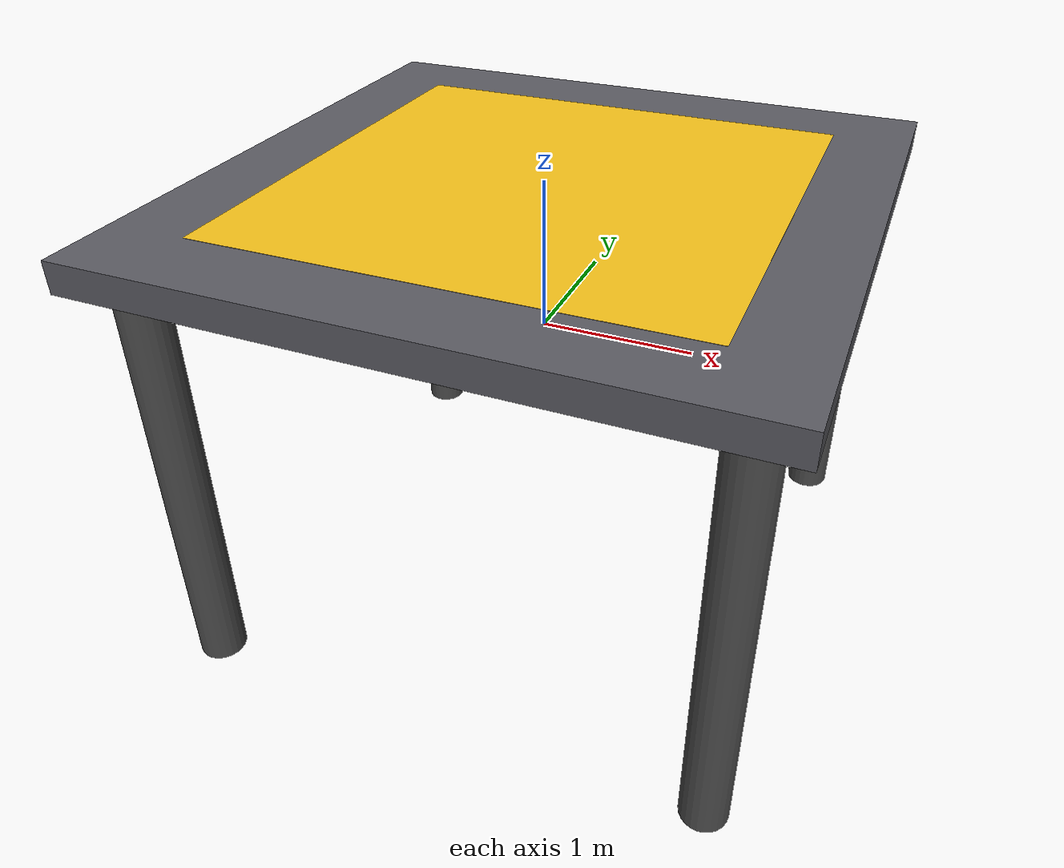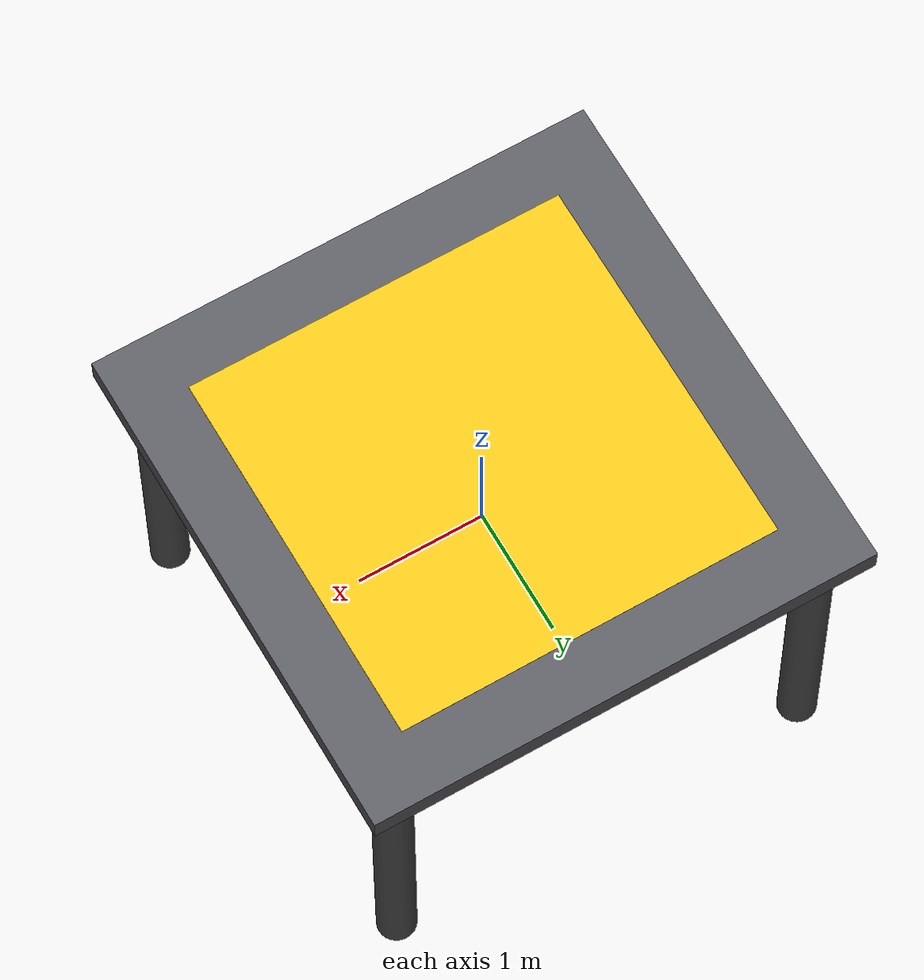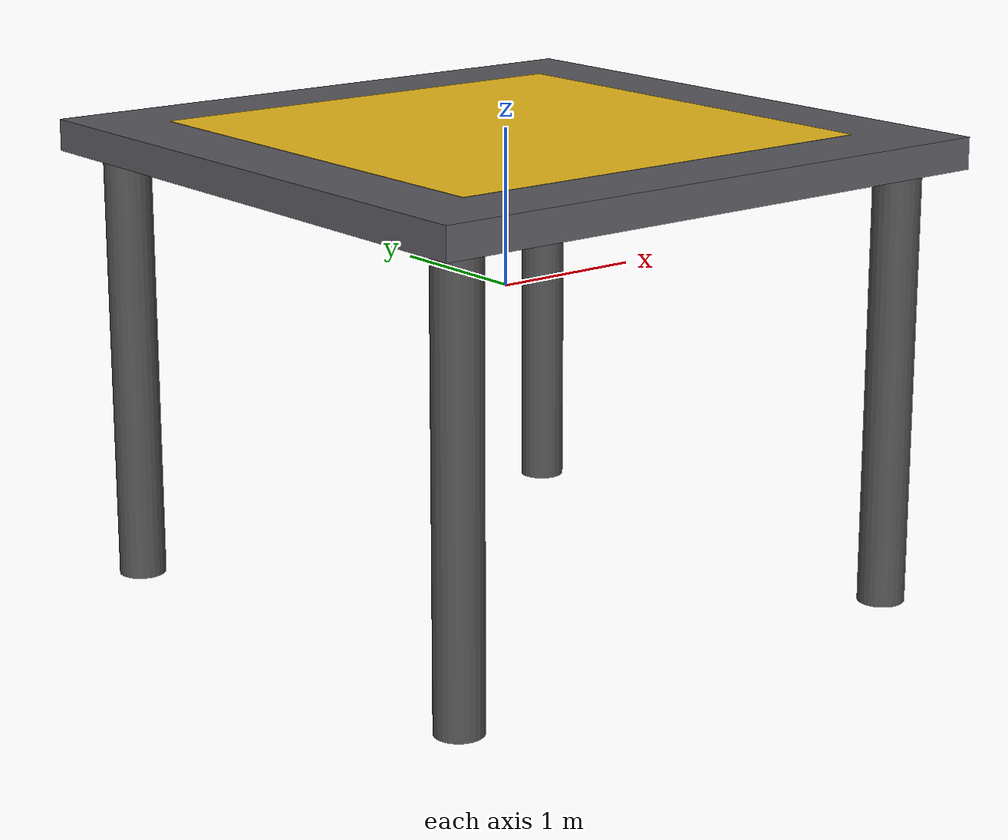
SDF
<?xml version="1.0"?>
<sdf version="1.12">
  <model name="landing_pad">
    <static>true</static>
    <link name="deck">
      <collision name="deck_collision">
        <pose>0 0 0.9 0 0 0</pose>
        <geometry><box><size>4 4 0.2</size></box></geometry>
      </collision>
      <visual name="deck_visual">
        <pose>0 0 0.9 0 0 0</pose>
        <geometry><box><size>4 4 0.2</size></box></geometry>
        <material>
          <ambient>0.35 0.35 0.38 1</ambient>
          <diffuse>0.35 0.35 0.38 1</diffuse>
        </material>
      </visual>
      <visual name="marking">
        <pose>0 0 1.001 0 0 0</pose>
        <geometry><box><size>3 3 0.002</size></box></geometry>
        <material>
          <ambient>0.95 0.75 0.1 1</ambient>
          <diffuse>0.95 0.75 0.1 1</diffuse>
        </material>
      </visual>
      <visual name="pylon_0">
        <pose>1.7 1.7 -0.6 0 0 0</pose>
        <geometry><cylinder><radius>0.15</radius><length>2.8</length></cylinder></geometry>
        <material><ambient>0.3 0.3 0.3 1</ambient><diffuse>0.3 0.3 0.3 1</diffuse></material>
      </visual>
      <visual name="pylon_1">
        <pose>-1.7 1.7 -0.6 0 0 0</pose>
        <geometry><cylinder><radius>0.15</radius><length>2.8</length></cylinder></geometry>
        <material><ambient>0.3 0.3 0.3 1</ambient><diffuse>0.3 0.3 0.3 1</diffuse></material>
      </visual>
      <visual name="pylon_2">
        <pose>1.7 -1.7 -0.6 0 0 0</pose>
        <geometry><cylinder><radius>0.15</radius><length>2.8</length></cylinder></geometry>
        <material><ambient>0.3 0.3 0.3 1</ambient><diffuse>0.3 0.3 0.3 1</diffuse></material>
      </visual>
      <visual name="pylon_3">
        <pose>-1.7 -1.7 -0.6 0 0 0</pose>
        <geometry><cylinder><radius>0.15</radius><length>2.8</length></cylinder></geometry>
        <material><ambient>0.3 0.3 0.3 1</ambient><diffuse>0.3 0.3 0.3 1</diffuse></material>
      </visual>
    </link>
  </model>
</sdf>
